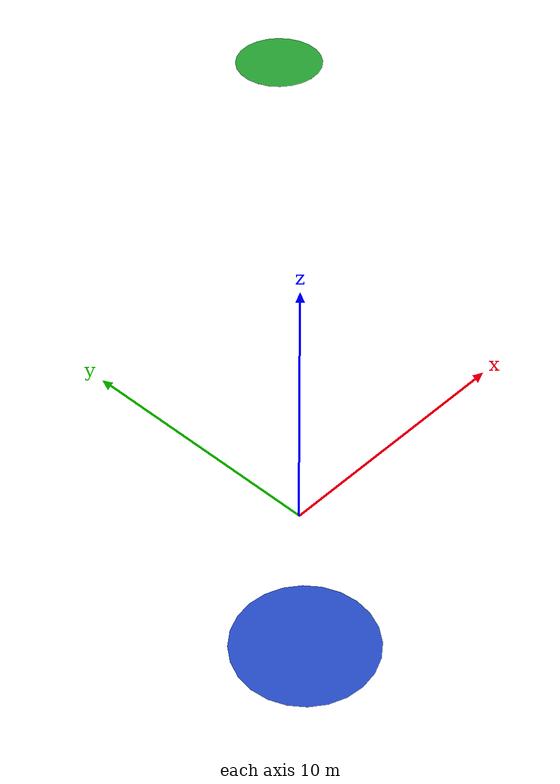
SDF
<?xml version="1.0"?>
<sdf version="1.6">
  <world name="empty_world">

    <!-- Enhanced Physics for smooth movement -->
    <physics name="default_physics" default="0" type="ode">
      <gravity>0 0 -9.8066</gravity>
      <ode>
        <solver>
          <type>quick</type>
          <iters>15</iters>
          <sor>1.3</sor>
          <use_dynamic_moi_rescaling>false</use_dynamic_moi_rescaling>
        </solver>
        <constraints>
          <cfm>0.00001</cfm>
          <erp>0.8</erp>
          <contact_max_correcting_vel>2000.0</contact_max_correcting_vel>
          <contact_surface_layer>0.01</contact_surface_layer>
        </constraints>
      </ode>
      <real_time_factor>1</real_time_factor>
      <real_time_update_rate>1000</real_time_update_rate>
      <max_step_size>0.001</max_step_size>
    </physics>

    <!-- Ground Plane -->
    <include>
      <uri>model://ground_plane</uri>
    </include>

    <!-- Lighting -->
    <include>
      <uri>model://sun</uri>
    </include>

    <!-- Start Area (Blue Platform) - SEJAJAR dengan lantai -->
    <model name="start_area">
      <pose>-4 -4 0.0 0 0 0</pose>  <!-- Z = 0.0 agar sejajar dengan ground_plane -->
      <static>true</static>
      <link name="link">
        <visual name="visual">
          <geometry>
            <cylinder>
              <radius>2.5</radius>
              <length>0.001</length>  <!-- Sangat tipis agar tidak mengganggu -->
            </cylinder>
          </geometry>
          <material>
            <script>
              <name>Gazebo/Blue</name>
            </script>
            <ambient>0.2 0.2 1.0 0.8</ambient>  <!-- Semi-transparan -->
            <diffuse>0.2 0.2 1.0 0.8</diffuse>
          </material>
        </visual>
        <!-- No collision untuk start area agar tidak ada perbedaan ketinggian -->
      </link>
    </model>

    <!-- Target Area (Green Platform) - SEJAJAR dengan lantai -->
    <model name="target_area">
      <pose>20 20 0.0 0 0 0</pose>  <!-- Z = 0.0 agar sejajar dengan ground_plane -->
      <static>true</static>
      <link name="link">
        <visual name="visual">
          <geometry>
            <cylinder>
              <radius>2.0</radius>
              <length>0.001</length>  <!-- Sangat tipis -->
            </cylinder>
          </geometry>
          <material>
            <script>
              <name>Gazebo/Green</name>
            </script>
            <ambient>0.2 1.0 0.2 0.8</ambient>  <!-- Semi-transparan -->
            <diffuse>0.2 1.0 0.2 0.8</diffuse>
          </material>
        </visual>
        <!-- No collision untuk target area -->
      </link>
    </model>

    <!-- Optional: Add grid lines for better visual reference -->
    <model name="grid_lines">
      <pose>8 8 0.001 0 0 0</pose>
      <static>true</static>
      <link name="link">
        <visual name="visual">
          <geometry>
            <plane>
              <normal>0 0 1</normal>
              <size>40 40</size>
            </plane>
          </geometry>
          <material>
            <script>
              <name>Gazebo/White</name>
            </script>
            <ambient>0.9 0.9 0.9 0.3</ambient>
            <diffuse>0.9 0.9 0.9 0.3</diffuse>
          </material>
        </visual>
      </link>
    </model>

  </world>
</sdf>
